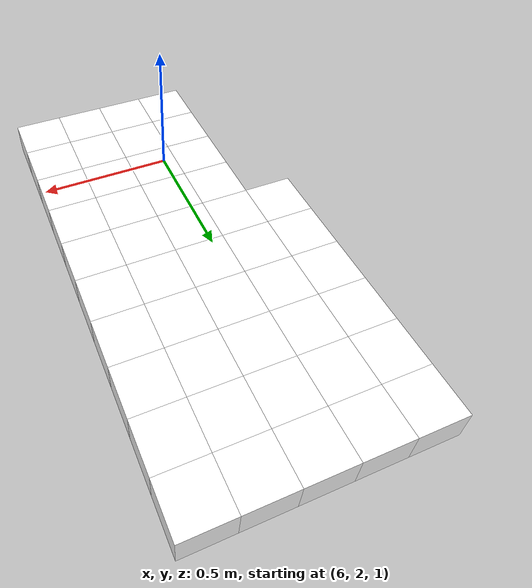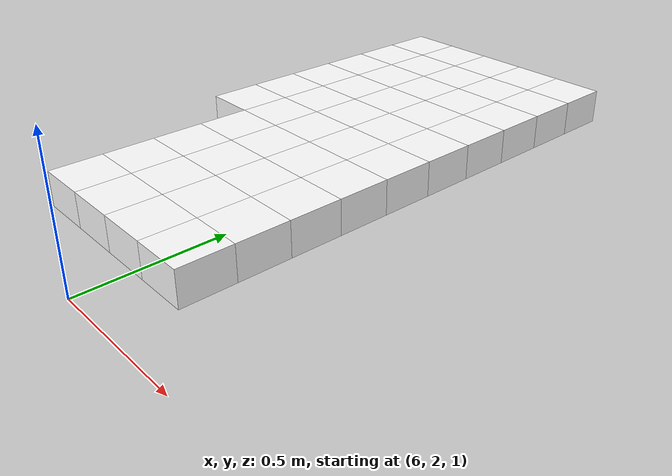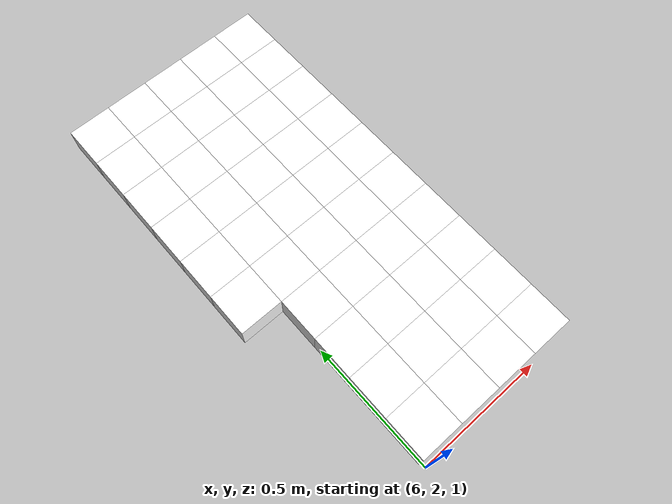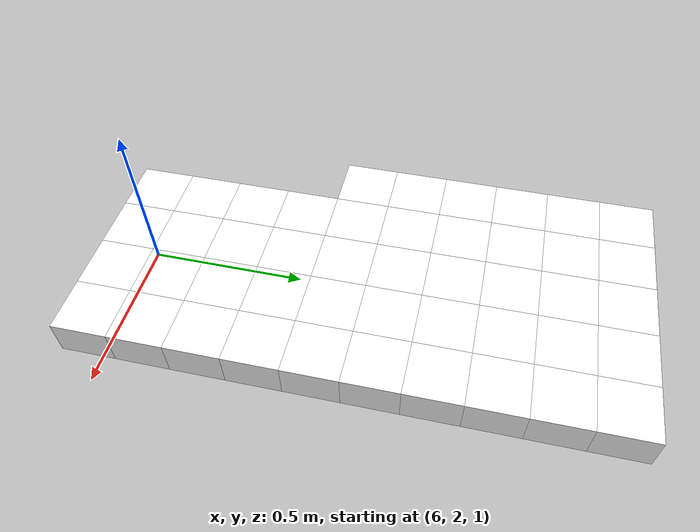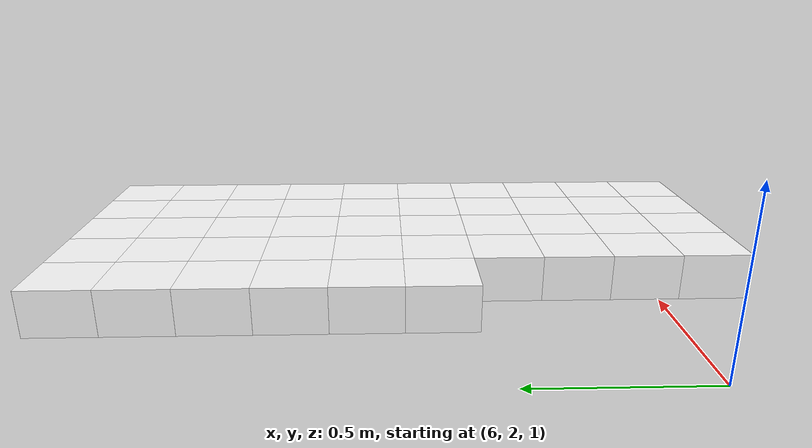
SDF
<sdf version="1.7">
 <world name="default">
  <include><uri>model://sun</uri></include>
  <model name="static_environment">
   <static>true</static>
   <link name="region_1016">
    <pose>6.025000000000006 2.0999999999999996 1.3 0.0 0.0 0.0</pose>
    <collision name="region_1016_collision">
     <geometry><box><size>0.15 0.15 0.1</size></box></geometry>
     <surface><friction><ode><mu>1.0</mu><mu2>1.0</mu2></ode></friction></surface>
    </collision>
    <visual name="region_1016_visual">
     <geometry><box><size>0.15 0.15 0.1</size></box></geometry>
     <material><ambient>1.0 1.0 1.0 1.0</ambient><diffuse>1.0 1.0 1.0 1.0</diffuse></material>
    </visual>
   </link>
   <link name="region_1017">
    <pose>6.175000000000006 2.0999999999999996 1.3 0.0 0.0 0.0</pose>
    <collision name="region_1017_collision">
     <geometry><box><size>0.15 0.15 0.1</size></box></geometry>
     <surface><friction><ode><mu>1.0</mu><mu2>1.0</mu2></ode></friction></surface>
    </collision>
    <visual name="region_1017_visual">
     <geometry><box><size>0.15 0.15 0.1</size></box></geometry>
     <material><ambient>1.0 1.0 1.0 1.0</ambient><diffuse>1.0 1.0 1.0 1.0</diffuse></material>
    </visual>
   </link>
   <link name="region_1018">
    <pose>6.325000000000006 2.0999999999999996 1.3 0.0 0.0 0.0</pose>
    <collision name="region_1018_collision">
     <geometry><box><size>0.15 0.15 0.1</size></box></geometry>
     <surface><friction><ode><mu>1.0</mu><mu2>1.0</mu2></ode></friction></surface>
    </collision>
    <visual name="region_1018_visual">
     <geometry><box><size>0.15 0.15 0.1</size></box></geometry>
     <material><ambient>1.0 1.0 1.0 1.0</ambient><diffuse>1.0 1.0 1.0 1.0</diffuse></material>
    </visual>
   </link>
   <link name="region_1019">
    <pose>6.475000000000007 2.0999999999999996 1.3 0.0 0.0 0.0</pose>
    <collision name="region_1019_collision">
     <geometry><box><size>0.15 0.15 0.1</size></box></geometry>
     <surface><friction><ode><mu>1.0</mu><mu2>1.0</mu2></ode></friction></surface>
    </collision>
    <visual name="region_1019_visual">
     <geometry><box><size>0.15 0.15 0.1</size></box></geometry>
     <material><ambient>1.0 1.0 1.0 1.0</ambient><diffuse>1.0 1.0 1.0 1.0</diffuse></material>
    </visual>
   </link>
   <link name="region_1036">
    <pose>6.025000000000006 2.2499999999999996 1.3 0.0 0.0 0.0</pose>
    <collision name="region_1036_collision">
     <geometry><box><size>0.15 0.15 0.1</size></box></geometry>
     <surface><friction><ode><mu>1.0</mu><mu2>1.0</mu2></ode></friction></surface>
    </collision>
    <visual name="region_1036_visual">
     <geometry><box><size>0.15 0.15 0.1</size></box></geometry>
     <material><ambient>1.0 1.0 1.0 1.0</ambient><diffuse>1.0 1.0 1.0 1.0</diffuse></material>
    </visual>
   </link>
   <link name="region_1037">
    <pose>6.175000000000006 2.2499999999999996 1.3 0.0 0.0 0.0</pose>
    <collision name="region_1037_collision">
     <geometry><box><size>0.15 0.15 0.1</size></box></geometry>
     <surface><friction><ode><mu>1.0</mu><mu2>1.0</mu2></ode></friction></surface>
    </collision>
    <visual name="region_1037_visual">
     <geometry><box><size>0.15 0.15 0.1</size></box></geometry>
     <material><ambient>1.0 1.0 1.0 1.0</ambient><diffuse>1.0 1.0 1.0 1.0</diffuse></material>
    </visual>
   </link>
   <link name="region_1038">
    <pose>6.325000000000006 2.2499999999999996 1.3 0.0 0.0 0.0</pose>
    <collision name="region_1038_collision">
     <geometry><box><size>0.15 0.15 0.1</size></box></geometry>
     <surface><friction><ode><mu>1.0</mu><mu2>1.0</mu2></ode></friction></surface>
    </collision>
    <visual name="region_1038_visual">
     <geometry><box><size>0.15 0.15 0.1</size></box></geometry>
     <material><ambient>1.0 1.0 1.0 1.0</ambient><diffuse>1.0 1.0 1.0 1.0</diffuse></material>
    </visual>
   </link>
   <link name="region_1039">
    <pose>6.475000000000007 2.2499999999999996 1.3 0.0 0.0 0.0</pose>
    <collision name="region_1039_collision">
     <geometry><box><size>0.15 0.15 0.1</size></box></geometry>
     <surface><friction><ode><mu>1.0</mu><mu2>1.0</mu2></ode></friction></surface>
    </collision>
    <visual name="region_1039_visual">
     <geometry><box><size>0.15 0.15 0.1</size></box></geometry>
     <material><ambient>1.0 1.0 1.0 1.0</ambient><diffuse>1.0 1.0 1.0 1.0</diffuse></material>
    </visual>
   </link>
   <link name="region_1056">
    <pose>6.025000000000006 2.3999999999999995 1.3 0.0 0.0 0.0</pose>
    <collision name="region_1056_collision">
     <geometry><box><size>0.15 0.15 0.1</size></box></geometry>
     <surface><friction><ode><mu>1.0</mu><mu2>1.0</mu2></ode></friction></surface>
    </collision>
    <visual name="region_1056_visual">
     <geometry><box><size>0.15 0.15 0.1</size></box></geometry>
     <material><ambient>1.0 1.0 1.0 1.0</ambient><diffuse>1.0 1.0 1.0 1.0</diffuse></material>
    </visual>
   </link>
   <link name="region_1057">
    <pose>6.175000000000006 2.3999999999999995 1.3 0.0 0.0 0.0</pose>
    <collision name="region_1057_collision">
     <geometry><box><size>0.15 0.15 0.1</size></box></geometry>
     <surface><friction><ode><mu>1.0</mu><mu2>1.0</mu2></ode></friction></surface>
    </collision>
    <visual name="region_1057_visual">
     <geometry><box><size>0.15 0.15 0.1</size></box></geometry>
     <material><ambient>1.0 1.0 1.0 1.0</ambient><diffuse>1.0 1.0 1.0 1.0</diffuse></material>
    </visual>
   </link>
   <link name="region_1058">
    <pose>6.325000000000006 2.3999999999999995 1.3 0.0 0.0 0.0</pose>
    <collision name="region_1058_collision">
     <geometry><box><size>0.15 0.15 0.1</size></box></geometry>
     <surface><friction><ode><mu>1.0</mu><mu2>1.0</mu2></ode></friction></surface>
    </collision>
    <visual name="region_1058_visual">
     <geometry><box><size>0.15 0.15 0.1</size></box></geometry>
     <material><ambient>1.0 1.0 1.0 1.0</ambient><diffuse>1.0 1.0 1.0 1.0</diffuse></material>
    </visual>
   </link>
   <link name="region_1059">
    <pose>6.475000000000007 2.3999999999999995 1.3 0.0 0.0 0.0</pose>
    <collision name="region_1059_collision">
     <geometry><box><size>0.15 0.15 0.1</size></box></geometry>
     <surface><friction><ode><mu>1.0</mu><mu2>1.0</mu2></ode></friction></surface>
    </collision>
    <visual name="region_1059_visual">
     <geometry><box><size>0.15 0.15 0.1</size></box></geometry>
     <material><ambient>1.0 1.0 1.0 1.0</ambient><diffuse>1.0 1.0 1.0 1.0</diffuse></material>
    </visual>
   </link>
   <link name="region_1076">
    <pose>6.025000000000006 2.5499999999999994 1.3 0.0 0.0 0.0</pose>
    <collision name="region_1076_collision">
     <geometry><box><size>0.15 0.15 0.1</size></box></geometry>
     <surface><friction><ode><mu>1.0</mu><mu2>1.0</mu2></ode></friction></surface>
    </collision>
    <visual name="region_1076_visual">
     <geometry><box><size>0.15 0.15 0.1</size></box></geometry>
     <material><ambient>1.0 1.0 1.0 1.0</ambient><diffuse>1.0 1.0 1.0 1.0</diffuse></material>
    </visual>
   </link>
   <link name="region_1077">
    <pose>6.175000000000006 2.5499999999999994 1.3 0.0 0.0 0.0</pose>
    <collision name="region_1077_collision">
     <geometry><box><size>0.15 0.15 0.1</size></box></geometry>
     <surface><friction><ode><mu>1.0</mu><mu2>1.0</mu2></ode></friction></surface>
    </collision>
    <visual name="region_1077_visual">
     <geometry><box><size>0.15 0.15 0.1</size></box></geometry>
     <material><ambient>1.0 1.0 1.0 1.0</ambient><diffuse>1.0 1.0 1.0 1.0</diffuse></material>
    </visual>
   </link>
   <link name="region_1078">
    <pose>6.325000000000006 2.5499999999999994 1.3 0.0 0.0 0.0</pose>
    <collision name="region_1078_collision">
     <geometry><box><size>0.15 0.15 0.1</size></box></geometry>
     <surface><friction><ode><mu>1.0</mu><mu2>1.0</mu2></ode></friction></surface>
    </collision>
    <visual name="region_1078_visual">
     <geometry><box><size>0.15 0.15 0.1</size></box></geometry>
     <material><ambient>1.0 1.0 1.0 1.0</ambient><diffuse>1.0 1.0 1.0 1.0</diffuse></material>
    </visual>
   </link>
   <link name="region_1079">
    <pose>6.475000000000007 2.5499999999999994 1.3 0.0 0.0 0.0</pose>
    <collision name="region_1079_collision">
     <geometry><box><size>0.15 0.15 0.1</size></box></geometry>
     <surface><friction><ode><mu>1.0</mu><mu2>1.0</mu2></ode></friction></surface>
    </collision>
    <visual name="region_1079_visual">
     <geometry><box><size>0.15 0.15 0.1</size></box></geometry>
     <material><ambient>1.0 1.0 1.0 1.0</ambient><diffuse>1.0 1.0 1.0 1.0</diffuse></material>
    </visual>
   </link>
   <link name="region_1095">
    <pose>5.875000000000005 2.6999999999999997 1.3 0.0 0.0 0.0</pose>
    <collision name="region_1095_collision">
     <geometry><box><size>0.15 0.15 0.1</size></box></geometry>
     <surface><friction><ode><mu>1.0</mu><mu2>1.0</mu2></ode></friction></surface>
    </collision>
    <visual name="region_1095_visual">
     <geometry><box><size>0.15 0.15 0.1</size></box></geometry>
     <material><ambient>1.0 1.0 1.0 1.0</ambient><diffuse>1.0 1.0 1.0 1.0</diffuse></material>
    </visual>
   </link>
   <link name="region_1096">
    <pose>6.025000000000006 2.6999999999999997 1.3 0.0 0.0 0.0</pose>
    <collision name="region_1096_collision">
     <geometry><box><size>0.15 0.15 0.1</size></box></geometry>
     <surface><friction><ode><mu>1.0</mu><mu2>1.0</mu2></ode></friction></surface>
    </collision>
    <visual name="region_1096_visual">
     <geometry><box><size>0.15 0.15 0.1</size></box></geometry>
     <material><ambient>1.0 1.0 1.0 1.0</ambient><diffuse>1.0 1.0 1.0 1.0</diffuse></material>
    </visual>
   </link>
   <link name="region_1097">
    <pose>6.175000000000006 2.6999999999999997 1.3 0.0 0.0 0.0</pose>
    <collision name="region_1097_collision">
     <geometry><box><size>0.15 0.15 0.1</size></box></geometry>
     <surface><friction><ode><mu>1.0</mu><mu2>1.0</mu2></ode></friction></surface>
    </collision>
    <visual name="region_1097_visual">
     <geometry><box><size>0.15 0.15 0.1</size></box></geometry>
     <material><ambient>1.0 1.0 1.0 1.0</ambient><diffuse>1.0 1.0 1.0 1.0</diffuse></material>
    </visual>
   </link>
   <link name="region_1098">
    <pose>6.325000000000006 2.6999999999999997 1.3 0.0 0.0 0.0</pose>
    <collision name="region_1098_collision">
     <geometry><box><size>0.15 0.15 0.1</size></box></geometry>
     <surface><friction><ode><mu>1.0</mu><mu2>1.0</mu2></ode></friction></surface>
    </collision>
    <visual name="region_1098_visual">
     <geometry><box><size>0.15 0.15 0.1</size></box></geometry>
     <material><ambient>1.0 1.0 1.0 1.0</ambient><diffuse>1.0 1.0 1.0 1.0</diffuse></material>
    </visual>
   </link>
   <link name="region_1099">
    <pose>6.475000000000007 2.6999999999999997 1.3 0.0 0.0 0.0</pose>
    <collision name="region_1099_collision">
     <geometry><box><size>0.15 0.15 0.1</size></box></geometry>
     <surface><friction><ode><mu>1.0</mu><mu2>1.0</mu2></ode></friction></surface>
    </collision>
    <visual name="region_1099_visual">
     <geometry><box><size>0.15 0.15 0.1</size></box></geometry>
     <material><ambient>1.0 1.0 1.0 1.0</ambient><diffuse>1.0 1.0 1.0 1.0</diffuse></material>
    </visual>
   </link>
   <link name="region_1115">
    <pose>5.875000000000005 2.8499999999999996 1.3 0.0 0.0 0.0</pose>
    <collision name="region_1115_collision">
     <geometry><box><size>0.15 0.15 0.1</size></box></geometry>
     <surface><friction><ode><mu>1.0</mu><mu2>1.0</mu2></ode></friction></surface>
    </collision>
    <visual name="region_1115_visual">
     <geometry><box><size>0.15 0.15 0.1</size></box></geometry>
     <material><ambient>1.0 1.0 1.0 1.0</ambient><diffuse>1.0 1.0 1.0 1.0</diffuse></material>
    </visual>
   </link>
   <link name="region_1116">
    <pose>6.025000000000006 2.8499999999999996 1.3 0.0 0.0 0.0</pose>
    <collision name="region_1116_collision">
     <geometry><box><size>0.15 0.15 0.1</size></box></geometry>
     <surface><friction><ode><mu>1.0</mu><mu2>1.0</mu2></ode></friction></surface>
    </collision>
    <visual name="region_1116_visual">
     <geometry><box><size>0.15 0.15 0.1</size></box></geometry>
     <material><ambient>1.0 1.0 1.0 1.0</ambient><diffuse>1.0 1.0 1.0 1.0</diffuse></material>
    </visual>
   </link>
   <link name="region_1117">
    <pose>6.175000000000006 2.8499999999999996 1.3 0.0 0.0 0.0</pose>
    <collision name="region_1117_collision">
     <geometry><box><size>0.15 0.15 0.1</size></box></geometry>
     <surface><friction><ode><mu>1.0</mu><mu2>1.0</mu2></ode></friction></surface>
    </collision>
    <visual name="region_1117_visual">
     <geometry><box><size>0.15 0.15 0.1</size></box></geometry>
     <material><ambient>1.0 1.0 1.0 1.0</ambient><diffuse>1.0 1.0 1.0 1.0</diffuse></material>
    </visual>
   </link>
   <link name="region_1118">
    <pose>6.325000000000006 2.8499999999999996 1.3 0.0 0.0 0.0</pose>
    <collision name="region_1118_collision">
     <geometry><box><size>0.15 0.15 0.1</size></box></geometry>
     <surface><friction><ode><mu>1.0</mu><mu2>1.0</mu2></ode></friction></surface>
    </collision>
    <visual name="region_1118_visual">
     <geometry><box><size>0.15 0.15 0.1</size></box></geometry>
     <material><ambient>1.0 1.0 1.0 1.0</ambient><diffuse>1.0 1.0 1.0 1.0</diffuse></material>
    </visual>
   </link>
   <link name="region_1119">
    <pose>6.475000000000007 2.8499999999999996 1.3 0.0 0.0 0.0</pose>
    <collision name="region_1119_collision">
     <geometry><box><size>0.15 0.15 0.1</size></box></geometry>
     <surface><friction><ode><mu>1.0</mu><mu2>1.0</mu2></ode></friction></surface>
    </collision>
    <visual name="region_1119_visual">
     <geometry><box><size>0.15 0.15 0.1</size></box></geometry>
     <material><ambient>1.0 1.0 1.0 1.0</ambient><diffuse>1.0 1.0 1.0 1.0</diffuse></material>
    </visual>
   </link>
   <link name="region_1135">
    <pose>5.875000000000005 2.9999999999999996 1.3 0.0 0.0 0.0</pose>
    <collision name="region_1135_collision">
     <geometry><box><size>0.15 0.15 0.1</size></box></geometry>
     <surface><friction><ode><mu>1.0</mu><mu2>1.0</mu2></ode></friction></surface>
    </collision>
    <visual name="region_1135_visual">
     <geometry><box><size>0.15 0.15 0.1</size></box></geometry>
     <material><ambient>1.0 1.0 1.0 1.0</ambient><diffuse>1.0 1.0 1.0 1.0</diffuse></material>
    </visual>
   </link>
   <link name="region_1136">
    <pose>6.025000000000006 2.9999999999999996 1.3 0.0 0.0 0.0</pose>
    <collision name="region_1136_collision">
     <geometry><box><size>0.15 0.15 0.1</size></box></geometry>
     <surface><friction><ode><mu>1.0</mu><mu2>1.0</mu2></ode></friction></surface>
    </collision>
    <visual name="region_1136_visual">
     <geometry><box><size>0.15 0.15 0.1</size></box></geometry>
     <material><ambient>1.0 1.0 1.0 1.0</ambient><diffuse>1.0 1.0 1.0 1.0</diffuse></material>
    </visual>
   </link>
   <link name="region_1137">
    <pose>6.175000000000006 2.9999999999999996 1.3 0.0 0.0 0.0</pose>
    <collision name="region_1137_collision">
     <geometry><box><size>0.15 0.15 0.1</size></box></geometry>
     <surface><friction><ode><mu>1.0</mu><mu2>1.0</mu2></ode></friction></surface>
    </collision>
    <visual name="region_1137_visual">
     <geometry><box><size>0.15 0.15 0.1</size></box></geometry>
     <material><ambient>1.0 1.0 1.0 1.0</ambient><diffuse>1.0 1.0 1.0 1.0</diffuse></material>
    </visual>
   </link>
   <link name="region_1138">
    <pose>6.325000000000006 2.9999999999999996 1.3 0.0 0.0 0.0</pose>
    <collision name="region_1138_collision">
     <geometry><box><size>0.15 0.15 0.1</size></box></geometry>
     <surface><friction><ode><mu>1.0</mu><mu2>1.0</mu2></ode></friction></surface>
    </collision>
    <visual name="region_1138_visual">
     <geometry><box><size>0.15 0.15 0.1</size></box></geometry>
     <material><ambient>1.0 1.0 1.0 1.0</ambient><diffuse>1.0 1.0 1.0 1.0</diffuse></material>
    </visual>
   </link>
   <link name="region_1139">
    <pose>6.475000000000007 2.9999999999999996 1.3 0.0 0.0 0.0</pose>
    <collision name="region_1139_collision">
     <geometry><box><size>0.15 0.15 0.1</size></box></geometry>
     <surface><friction><ode><mu>1.0</mu><mu2>1.0</mu2></ode></friction></surface>
    </collision>
    <visual name="region_1139_visual">
     <geometry><box><size>0.15 0.15 0.1</size></box></geometry>
     <material><ambient>1.0 1.0 1.0 1.0</ambient><diffuse>1.0 1.0 1.0 1.0</diffuse></material>
    </visual>
   </link>
   <link name="region_1155">
    <pose>5.875000000000005 3.1499999999999995 1.3 0.0 0.0 0.0</pose>
    <collision name="region_1155_collision">
     <geometry><box><size>0.15 0.15 0.1</size></box></geometry>
     <surface><friction><ode><mu>1.0</mu><mu2>1.0</mu2></ode></friction></surface>
    </collision>
    <visual name="region_1155_visual">
     <geometry><box><size>0.15 0.15 0.1</size></box></geometry>
     <material><ambient>1.0 1.0 1.0 1.0</ambient><diffuse>1.0 1.0 1.0 1.0</diffuse></material>
    </visual>
   </link>
   <link name="region_1156">
    <pose>6.025000000000006 3.1499999999999995 1.3 0.0 0.0 0.0</pose>
    <collision name="region_1156_collision">
     <geometry><box><size>0.15 0.15 0.1</size></box></geometry>
     <surface><friction><ode><mu>1.0</mu><mu2>1.0</mu2></ode></friction></surface>
    </collision>
    <visual name="region_1156_visual">
     <geometry><box><size>0.15 0.15 0.1</size></box></geometry>
     <material><ambient>1.0 1.0 1.0 1.0</ambient><diffuse>1.0 1.0 1.0 1.0</diffuse></material>
    </visual>
   </link>
   <link name="region_1157">
    <pose>6.175000000000006 3.1499999999999995 1.3 0.0 0.0 0.0</pose>
    <collision name="region_1157_collision">
     <geometry><box><size>0.15 0.15 0.1</size></box></geometry>
     <surface><friction><ode><mu>1.0</mu><mu2>1.0</mu2></ode></friction></surface>
    </collision>
    <visual name="region_1157_visual">
     <geometry><box><size>0.15 0.15 0.1</size></box></geometry>
     <material><ambient>1.0 1.0 1.0 1.0</ambient><diffuse>1.0 1.0 1.0 1.0</diffuse></material>
    </visual>
   </link>
   <link name="region_1158">
    <pose>6.325000000000006 3.1499999999999995 1.3 0.0 0.0 0.0</pose>
    <collision name="region_1158_collision">
     <geometry><box><size>0.15 0.15 0.1</size></box></geometry>
     <surface><friction><ode><mu>1.0</mu><mu2>1.0</mu2></ode></friction></surface>
    </collision>
    <visual name="region_1158_visual">
     <geometry><box><size>0.15 0.15 0.1</size></box></geometry>
     <material><ambient>1.0 1.0 1.0 1.0</ambient><diffuse>1.0 1.0 1.0 1.0</diffuse></material>
    </visual>
   </link>
   <link name="region_1159">
    <pose>6.475000000000007 3.1499999999999995 1.3 0.0 0.0 0.0</pose>
    <collision name="region_1159_collision">
     <geometry><box><size>0.15 0.15 0.1</size></box></geometry>
     <surface><friction><ode><mu>1.0</mu><mu2>1.0</mu2></ode></friction></surface>
    </collision>
    <visual name="region_1159_visual">
     <geometry><box><size>0.15 0.15 0.1</size></box></geometry>
     <material><ambient>1.0 1.0 1.0 1.0</ambient><diffuse>1.0 1.0 1.0 1.0</diffuse></material>
    </visual>
   </link>
   <link name="region_1175">
    <pose>5.875000000000005 3.2999999999999994 1.3 0.0 0.0 0.0</pose>
    <collision name="region_1175_collision">
     <geometry><box><size>0.15 0.15 0.1</size></box></geometry>
     <surface><friction><ode><mu>1.0</mu><mu2>1.0</mu2></ode></friction></surface>
    </collision>
    <visual name="region_1175_visual">
     <geometry><box><size>0.15 0.15 0.1</size></box></geometry>
     <material><ambient>1.0 1.0 1.0 1.0</ambient><diffuse>1.0 1.0 1.0 1.0</diffuse></material>
    </visual>
   </link>
   <link name="region_1176">
    <pose>6.025000000000006 3.2999999999999994 1.3 0.0 0.0 0.0</pose>
    <collision name="region_1176_collision">
     <geometry><box><size>0.15 0.15 0.1</size></box></geometry>
     <surface><friction><ode><mu>1.0</mu><mu2>1.0</mu2></ode></friction></surface>
    </collision>
    <visual name="region_1176_visual">
     <geometry><box><size>0.15 0.15 0.1</size></box></geometry>
     <material><ambient>1.0 1.0 1.0 1.0</ambient><diffuse>1.0 1.0 1.0 1.0</diffuse></material>
    </visual>
   </link>
   <link name="region_1177">
    <pose>6.175000000000006 3.2999999999999994 1.3 0.0 0.0 0.0</pose>
    <collision name="region_1177_collision">
     <geometry><box><size>0.15 0.15 0.1</size></box></geometry>
     <surface><friction><ode><mu>1.0</mu><mu2>1.0</mu2></ode></friction></surface>
    </collision>
    <visual name="region_1177_visual">
     <geometry><box><size>0.15 0.15 0.1</size></box></geometry>
     <material><ambient>1.0 1.0 1.0 1.0</ambient><diffuse>1.0 1.0 1.0 1.0</diffuse></material>
    </visual>
   </link>
   <link name="region_1178">
    <pose>6.325000000000006 3.2999999999999994 1.3 0.0 0.0 0.0</pose>
    <collision name="region_1178_collision">
     <geometry><box><size>0.15 0.15 0.1</size></box></geometry>
     <surface><friction><ode><mu>1.0</mu><mu2>1.0</mu2></ode></friction></surface>
    </collision>
    <visual name="region_1178_visual">
     <geometry><box><size>0.15 0.15 0.1</size></box></geometry>
     <material><ambient>1.0 1.0 1.0 1.0</ambient><diffuse>1.0 1.0 1.0 1.0</diffuse></material>
    </visual>
   </link>
   <link name="region_1179">
    <pose>6.475000000000007 3.2999999999999994 1.3 0.0 0.0 0.0</pose>
    <collision name="region_1179_collision">
     <geometry><box><size>0.15 0.15 0.1</size></box></geometry>
     <surface><friction><ode><mu>1.0</mu><mu2>1.0</mu2></ode></friction></surface>
    </collision>
    <visual name="region_1179_visual">
     <geometry><box><size>0.15 0.15 0.1</size></box></geometry>
     <material><ambient>1.0 1.0 1.0 1.0</ambient><diffuse>1.0 1.0 1.0 1.0</diffuse></material>
    </visual>
   </link>
   <link name="region_1195">
    <pose>5.875000000000005 3.4499999999999993 1.3 0.0 0.0 0.0</pose>
    <collision name="region_1195_collision">
     <geometry><box><size>0.15 0.15 0.1</size></box></geometry>
     <surface><friction><ode><mu>1.0</mu><mu2>1.0</mu2></ode></friction></surface>
    </collision>
    <visual name="region_1195_visual">
     <geometry><box><size>0.15 0.15 0.1</size></box></geometry>
     <material><ambient>1.0 1.0 1.0 1.0</ambient><diffuse>1.0 1.0 1.0 1.0</diffuse></material>
    </visual>
   </link>
   <link name="region_1196">
    <pose>6.025000000000006 3.4499999999999993 1.3 0.0 0.0 0.0</pose>
    <collision name="region_1196_collision">
     <geometry><box><size>0.15 0.15 0.1</size></box></geometry>
     <surface><friction><ode><mu>1.0</mu><mu2>1.0</mu2></ode></friction></surface>
    </collision>
    <visual name="region_1196_visual">
     <geometry><box><size>0.15 0.15 0.1</size></box></geometry>
     <material><ambient>1.0 1.0 1.0 1.0</ambient><diffuse>1.0 1.0 1.0 1.0</diffuse></material>
    </visual>
   </link>
   <link name="region_1197">
    <pose>6.175000000000006 3.4499999999999993 1.3 0.0 0.0 0.0</pose>
    <collision name="region_1197_collision">
     <geometry><box><size>0.15 0.15 0.1</size></box></geometry>
     <surface><friction><ode><mu>1.0</mu><mu2>1.0</mu2></ode></friction></surface>
    </collision>
    <visual name="region_1197_visual">
     <geometry><box><size>0.15 0.15 0.1</size></box></geometry>
     <material><ambient>1.0 1.0 1.0 1.0</ambient><diffuse>1.0 1.0 1.0 1.0</diffuse></material>
    </visual>
   </link>
   <link name="region_1198">
    <pose>6.325000000000006 3.4499999999999993 1.3 0.0 0.0 0.0</pose>
    <collision name="region_1198_collision">
     <geometry><box><size>0.15 0.15 0.1</size></box></geometry>
     <surface><friction><ode><mu>1.0</mu><mu2>1.0</mu2></ode></friction></surface>
    </collision>
    <visual name="region_1198_visual">
     <geometry><box><size>0.15 0.15 0.1</size></box></geometry>
     <material><ambient>1.0 1.0 1.0 1.0</ambient><diffuse>1.0 1.0 1.0 1.0</diffuse></material>
    </visual>
   </link>
   <link name="region_1199">
    <pose>6.475000000000007 3.4499999999999993 1.3 0.0 0.0 0.0</pose>
    <collision name="region_1199_collision">
     <geometry><box><size>0.15 0.15 0.1</size></box></geometry>
     <surface><friction><ode><mu>1.0</mu><mu2>1.0</mu2></ode></friction></surface>
    </collision>
    <visual name="region_1199_visual">
     <geometry><box><size>0.15 0.15 0.1</size></box></geometry>
     <material><ambient>1.0 1.0 1.0 1.0</ambient><diffuse>1.0 1.0 1.0 1.0</diffuse></material>
    </visual>
   </link>
  </model>
 </world>
</sdf>
